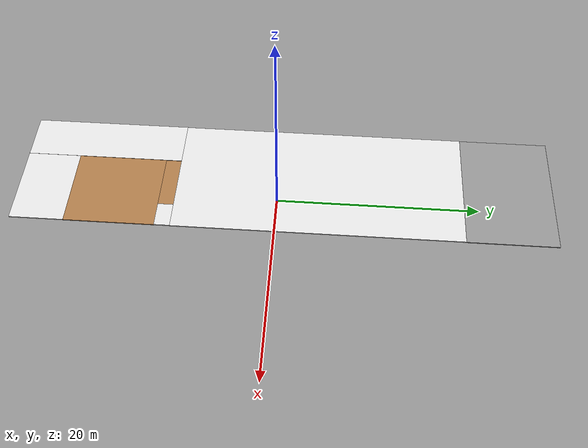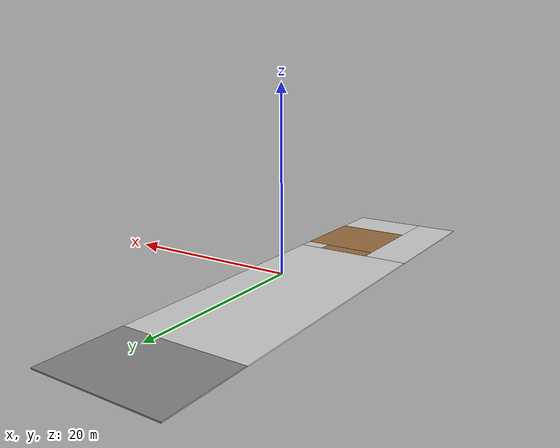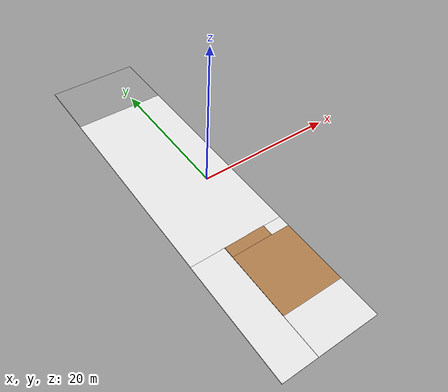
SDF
<?xml version='1.0'?>
<sdf version='1.7'>
  <model name='ageve_floor'>
    <link name='link'>
      <self_collide>0</self_collide>
      <enable_wind>0</enable_wind>
      <kinematic>0</kinematic>
      <pose>-2.67 23 0 0 -0 0</pose>
      <gravity>1</gravity>
      <inertial>
        <mass>1</mass>
        <pose>0 0 0 0 -0 0</pose>
        <inertia>
          <ixx>1</ixx>
          <ixy>0</ixy>
          <ixz>0</ixz>
          <iyy>1</iyy>
          <iyz>0</iyz>
          <izz>1</izz>
        </inertia>
      </inertial>
      <visual name='visual'>
        <cast_shadows>0</cast_shadows>
        <geometry>
          <box>
            <size>13.2 9 0.1</size>
          </box>
        </geometry>
        <material>
          <shader type='pixel'>
            <normal_map>__default__</normal_map>
          </shader>
          <script>
            <name>Gazebo/Grey</name>
            <uri>__default__</uri>
          </script>
        </material>
        <pose>-0.08 0 0 0 -0 0</pose>
        <transparency>0</transparency>
      </visual>
      <collision name='collision'>
        <laser_retro>0</laser_retro>
        <max_contacts>10</max_contacts>
        <pose>-0.06 0 0 0 -0 0</pose>
        <geometry>
          <box>
            <size>13.2 9 0.1</size>
          </box>
        </geometry>
        <surface>
          <friction>
            <ode>
              <mu>1</mu>
              <mu2>1</mu2>
              <fdir1>0 0 0</fdir1>
              <slip1>0</slip1>
              <slip2>0</slip2>
            </ode>
            <torsional>
              <coefficient>1</coefficient>
              <patch_radius>0</patch_radius>
              <surface_radius>0</surface_radius>
              <use_patch_radius>1</use_patch_radius>
              <ode>
                <slip>0</slip>
              </ode>
            </torsional>
          </friction>
          <bounce>
            <restitution_coefficient>0</restitution_coefficient>
            <threshold>1e+06</threshold>
          </bounce>
          <contact>
            <collide_without_contact>0</collide_without_contact>
            <collide_without_contact_bitmask>1</collide_without_contact_bitmask>
            <collide_bitmask>1</collide_bitmask>
            <ode>
              <soft_cfm>0</soft_cfm>
              <soft_erp>0.2</soft_erp>
              <kp>1e+13</kp>
              <kd>1</kd>
              <max_vel>0.01</max_vel>
              <min_depth>0</min_depth>
            </ode>
            <bullet>
              <split_impulse>1</split_impulse>
              <split_impulse_penetration_threshold>-0.01</split_impulse_penetration_threshold>
              <soft_cfm>0</soft_cfm>
              <soft_erp>0.2</soft_erp>
              <kp>1e+13</kp>
              <kd>1</kd>
            </bullet>
          </contact>
        </surface>
      </collision>
    </link>
    <link name='link_clone'>
      <self_collide>0</self_collide>
      <enable_wind>0</enable_wind>
      <kinematic>0</kinematic>
      <pose>-2.69731 4.16 0 0 -0 0</pose>
      <gravity>1</gravity>
      <inertial>
        <mass>1</mass>
        <pose>0 0 0 0 -0 0</pose>
        <inertia>
          <ixx>1</ixx>
          <ixy>0</ixy>
          <ixz>0</ixz>
          <iyy>1</iyy>
          <iyz>0</iyz>
          <izz>1</izz>
        </inertia>
      </inertial>
      <visual name='visual'>
        <cast_shadows>0</cast_shadows>
        <geometry>
          <box>
            <size>13.2 28.8 0.1</size>
          </box>
        </geometry>
        <material>
          <shader type='pixel'>
            <normal_map>__default__</normal_map>
          </shader>
          <script>
            <name>Gazebo/White</name>
            <uri>__default__</uri>
          </script>
        </material>
        <pose>-0.08 0 0 0 -0 0</pose>
        <transparency>0</transparency>
      </visual>
      <collision name='collision'>
        <laser_retro>0</laser_retro>
        <max_contacts>10</max_contacts>
        <pose>-0.06 0 0 0 -0 0</pose>
        <geometry>
          <box>
            <size>13.2 28.8 0.1</size>
          </box>
        </geometry>
        <surface>
          <friction>
            <ode>
              <mu>1</mu>
              <mu2>1</mu2>
              <fdir1>0 0 0</fdir1>
              <slip1>0</slip1>
              <slip2>0</slip2>
            </ode>
            <torsional>
              <coefficient>1</coefficient>
              <patch_radius>0</patch_radius>
              <surface_radius>0</surface_radius>
              <use_patch_radius>1</use_patch_radius>
              <ode>
                <slip>0</slip>
              </ode>
            </torsional>
          </friction>
          <bounce>
            <restitution_coefficient>0</restitution_coefficient>
            <threshold>1e+06</threshold>
          </bounce>
          <contact>
            <collide_without_contact>0</collide_without_contact>
            <collide_without_contact_bitmask>1</collide_without_contact_bitmask>
            <collide_bitmask>1</collide_bitmask>
            <ode>
              <soft_cfm>0</soft_cfm>
              <soft_erp>0.2</soft_erp>
              <kp>1e+13</kp>
              <kd>1</kd>
              <max_vel>0.01</max_vel>
              <min_depth>0</min_depth>
            </ode>
            <bullet>
              <split_impulse>1</split_impulse>
              <split_impulse_penetration_threshold>-0.01</split_impulse_penetration_threshold>
              <soft_cfm>0</soft_cfm>
              <soft_erp>0.2</soft_erp>
              <kp>1e+13</kp>
              <kd>1</kd>
            </bullet>
          </contact>
        </surface>
      </collision>
    </link>
    <link name='link_clone_0'>
      <self_collide>0</self_collide>
      <enable_wind>0</enable_wind>
      <kinematic>0</kinematic>
      <pose>-0.3 -16.2948 0 0 -0 0</pose>
      <gravity>1</gravity>
      <inertial>
        <mass>1</mass>
        <pose>0 0 0 0 -0 0</pose>
        <inertia>
          <ixx>1</ixx>
          <ixy>0</ixy>
          <ixz>0</ixz>
          <iyy>1</iyy>
          <iyz>0</iyz>
          <izz>1</izz>
        </inertia>
      </inertial>
      <visual name='visual'>
        <cast_shadows>0</cast_shadows>
        <geometry>
          <box>
            <size>8.4 9 0.1</size>
          </box>
        </geometry>
        <material>
          <shader type='pixel'>
            <normal_map>__default__</normal_map>
          </shader>
          <script>
            <name>Gazebo/Wood</name>
            <uri>__default__</uri>
          </script>
        </material>
        <pose>-0.08 0 0 0 -0 0</pose>
        <transparency>0</transparency>
      </visual>
      <collision name='collision'>
        <laser_retro>0</laser_retro>
        <max_contacts>10</max_contacts>
        <pose>-0.06 0 0 0 -0 0</pose>
        <geometry>
          <box>
            <size>8.4 9 0.1</size>
          </box>
        </geometry>
        <surface>
          <friction>
            <ode>
              <mu>1</mu>
              <mu2>1</mu2>
              <fdir1>0 0 0</fdir1>
              <slip1>0</slip1>
              <slip2>0</slip2>
            </ode>
            <torsional>
              <coefficient>1</coefficient>
              <patch_radius>0</patch_radius>
              <surface_radius>0</surface_radius>
              <use_patch_radius>1</use_patch_radius>
              <ode>
                <slip>0</slip>
              </ode>
            </torsional>
          </friction>
          <bounce>
            <restitution_coefficient>0</restitution_coefficient>
            <threshold>1e+06</threshold>
          </bounce>
          <contact>
            <collide_without_contact>0</collide_without_contact>
            <collide_without_contact_bitmask>1</collide_without_contact_bitmask>
            <collide_bitmask>1</collide_bitmask>
            <ode>
              <soft_cfm>0</soft_cfm>
              <soft_erp>0.2</soft_erp>
              <kp>1e+13</kp>
              <kd>1</kd>
              <max_vel>0.01</max_vel>
              <min_depth>0</min_depth>
            </ode>
            <bullet>
              <split_impulse>1</split_impulse>
              <split_impulse_penetration_threshold>-0.01</split_impulse_penetration_threshold>
              <soft_cfm>0</soft_cfm>
              <soft_erp>0.2</soft_erp>
              <kp>1e+13</kp>
              <kd>1</kd>
            </bullet>
          </contact>
        </surface>
      </collision>
    </link>
    <link name='link_clone_0_clone'>
      <self_collide>0</self_collide>
      <enable_wind>0</enable_wind>
      <kinematic>0</kinematic>
      <pose>-1.58 -11 0 0 -0 0</pose>
      <gravity>1</gravity>
      <inertial>
        <mass>1</mass>
        <pose>0 0 0 0 -0 0</pose>
        <inertia>
          <ixx>1</ixx>
          <ixy>0</ixy>
          <ixz>0</ixz>
          <iyy>1</iyy>
          <iyz>0</iyz>
          <izz>1</izz>
        </inertia>
      </inertial>
      <visual name='visual'>
        <cast_shadows>0</cast_shadows>
        <geometry>
          <box>
            <size>5.8 1.6 0.1</size>
          </box>
        </geometry>
        <material>
          <shader type='pixel'>
            <normal_map>__default__</normal_map>
          </shader>
          <script>
            <name>Gazebo/Wood</name>
            <uri>__default__</uri>
          </script>
        </material>
        <pose>-0.08 0 0 0 -0 0</pose>
        <transparency>0</transparency>
      </visual>
      <collision name='collision'>
        <laser_retro>0</laser_retro>
        <max_contacts>10</max_contacts>
        <pose>-0.06 0 0 0 -0 0</pose>
        <geometry>
          <box>
            <size>5.8 1.6 0.1</size>
          </box>
        </geometry>
        <surface>
          <friction>
            <ode>
              <mu>1</mu>
              <mu2>1</mu2>
              <fdir1>0 0 0</fdir1>
              <slip1>0</slip1>
              <slip2>0</slip2>
            </ode>
            <torsional>
              <coefficient>1</coefficient>
              <patch_radius>0</patch_radius>
              <surface_radius>0</surface_radius>
              <use_patch_radius>1</use_patch_radius>
              <ode>
                <slip>0</slip>
              </ode>
            </torsional>
          </friction>
          <bounce>
            <restitution_coefficient>0</restitution_coefficient>
            <threshold>1e+06</threshold>
          </bounce>
          <contact>
            <collide_without_contact>0</collide_without_contact>
            <collide_without_contact_bitmask>1</collide_without_contact_bitmask>
            <collide_bitmask>1</collide_bitmask>
            <ode>
              <soft_cfm>0</soft_cfm>
              <soft_erp>0.2</soft_erp>
              <kp>1e+13</kp>
              <kd>1</kd>
              <max_vel>0.01</max_vel>
              <min_depth>0</min_depth>
            </ode>
            <bullet>
              <split_impulse>1</split_impulse>
              <split_impulse_penetration_threshold>-0.01</split_impulse_penetration_threshold>
              <soft_cfm>0</soft_cfm>
              <soft_erp>0.2</soft_erp>
              <kp>1e+13</kp>
              <kd>1</kd>
            </bullet>
          </contact>
        </surface>
      </collision>
    </link>
    <link name='link_clone_clone'>
      <self_collide>0</self_collide>
      <enable_wind>0</enable_wind>
      <kinematic>0</kinematic>
      <pose>-6.92 -18.18 0 0 -0 0</pose>
      <gravity>1</gravity>
      <inertial>
        <mass>1</mass>
        <pose>0 0 0 0 -0 0</pose>
        <inertia>
          <ixx>1</ixx>
          <ixy>0</ixy>
          <ixz>0</ixz>
          <iyy>1</iyy>
          <iyz>0</iyz>
          <izz>1</izz>
        </inertia>
      </inertial>
      <visual name='visual'>
        <cast_shadows>0</cast_shadows>
        <geometry>
          <box>
            <size>4.8 16 0.1</size>
          </box>
        </geometry>
        <material>
          <shader type='pixel'>
            <normal_map>__default__</normal_map>
          </shader>
          <script>
            <name>Gazebo/White</name>
            <uri>__default__</uri>
          </script>
        </material>
        <pose>-0.08 0 0 0 -0 0</pose>
        <transparency>0</transparency>
      </visual>
      <collision name='collision'>
        <laser_retro>0</laser_retro>
        <max_contacts>10</max_contacts>
        <pose>-0.06 0 0 0 -0 0</pose>
        <geometry>
          <box>
            <size>4.8 16 0.1</size>
          </box>
        </geometry>
        <surface>
          <friction>
            <ode>
              <mu>1</mu>
              <mu2>1</mu2>
              <fdir1>0 0 0</fdir1>
              <slip1>0</slip1>
              <slip2>0</slip2>
            </ode>
            <torsional>
              <coefficient>1</coefficient>
              <patch_radius>0</patch_radius>
              <surface_radius>0</surface_radius>
              <use_patch_radius>1</use_patch_radius>
              <ode>
                <slip>0</slip>
              </ode>
            </torsional>
          </friction>
          <bounce>
            <restitution_coefficient>0</restitution_coefficient>
            <threshold>1e+06</threshold>
          </bounce>
          <contact>
            <collide_without_contact>0</collide_without_contact>
            <collide_without_contact_bitmask>1</collide_without_contact_bitmask>
            <collide_bitmask>1</collide_bitmask>
            <ode>
              <soft_cfm>0</soft_cfm>
              <soft_erp>0.2</soft_erp>
              <kp>1e+13</kp>
              <kd>1</kd>
              <max_vel>0.01</max_vel>
              <min_depth>0</min_depth>
            </ode>
            <bullet>
              <split_impulse>1</split_impulse>
              <split_impulse_penetration_threshold>-0.01</split_impulse_penetration_threshold>
              <soft_cfm>0</soft_cfm>
              <soft_erp>0.2</soft_erp>
              <kp>1e+13</kp>
              <kd>1</kd>
            </bullet>
          </contact>
        </surface>
      </collision>
    </link>
    <link name='link_clone_clone_clone'>
      <self_collide>0</self_collide>
      <enable_wind>0</enable_wind>
      <kinematic>0</kinematic>
      <pose>2.57811 -11.04 0 0 -0 0</pose>
      <gravity>1</gravity>
      <inertial>
        <mass>1</mass>
        <pose>0 0 0 0 -0 0</pose>
        <inertia>
          <ixx>1</ixx>
          <ixy>0</ixy>
          <ixz>0</ixz>
          <iyy>1</iyy>
          <iyz>0</iyz>
          <izz>1</izz>
        </inertia>
      </inertial>
      <visual name='visual'>
        <cast_shadows>0</cast_shadows>
        <geometry>
          <box>
            <size>2.6 1.6 0.1</size>
          </box>
        </geometry>
        <material>
          <shader type='pixel'>
            <normal_map>__default__</normal_map>
          </shader>
          <script>
            <name>Gazebo/White</name>
            <uri>__default__</uri>
          </script>
        </material>
        <pose>-0.08 0 0 0 -0 0</pose>
        <transparency>0</transparency>
      </visual>
      <collision name='collision'>
        <laser_retro>0</laser_retro>
        <max_contacts>10</max_contacts>
        <pose>-0.06 0 0 0 -0 0</pose>
        <geometry>
          <box>
            <size>2.6 1.6 0.1</size>
          </box>
        </geometry>
        <surface>
          <friction>
            <ode>
              <mu>1</mu>
              <mu2>1</mu2>
              <fdir1>0 0 0</fdir1>
              <slip1>0</slip1>
              <slip2>0</slip2>
            </ode>
            <torsional>
              <coefficient>1</coefficient>
              <patch_radius>0</patch_radius>
              <surface_radius>0</surface_radius>
              <use_patch_radius>1</use_patch_radius>
              <ode>
                <slip>0</slip>
              </ode>
            </torsional>
          </friction>
          <bounce>
            <restitution_coefficient>0</restitution_coefficient>
            <threshold>1e+06</threshold>
          </bounce>
          <contact>
            <collide_without_contact>0</collide_without_contact>
            <collide_without_contact_bitmask>1</collide_without_contact_bitmask>
            <collide_bitmask>1</collide_bitmask>
            <ode>
              <soft_cfm>0</soft_cfm>
              <soft_erp>0.2</soft_erp>
              <kp>1e+13</kp>
              <kd>1</kd>
              <max_vel>0.01</max_vel>
              <min_depth>0</min_depth>
            </ode>
            <bullet>
              <split_impulse>1</split_impulse>
              <split_impulse_penetration_threshold>-0.01</split_impulse_penetration_threshold>
              <soft_cfm>0</soft_cfm>
              <soft_erp>0.2</soft_erp>
              <kp>1e+13</kp>
              <kd>1</kd>
            </bullet>
          </contact>
        </surface>
      </collision>
    </link>
    <link name='link_clone_clone_clone_0'>
      <self_collide>0</self_collide>
      <enable_wind>0</enable_wind>
      <kinematic>0</kinematic>
      <pose>-0.313896 -23.48 0 0 -0 0</pose>
      <gravity>1</gravity>
      <inertial>
        <mass>1</mass>
        <pose>0 0 0 0 -0 0</pose>
        <inertia>
          <ixx>1</ixx>
          <ixy>0</ixy>
          <ixz>0</ixz>
          <iyy>1</iyy>
          <iyz>0</iyz>
          <izz>1</izz>
        </inertia>
      </inertial>
      <visual name='visual'>
        <cast_shadows>0</cast_shadows>
        <geometry>
          <box>
            <size>8.4 5.4 0.1</size>
          </box>
        </geometry>
        <material>
          <shader type='pixel'>
            <normal_map>__default__</normal_map>
          </shader>
          <script>
            <name>Gazebo/White</name>
            <uri>__default__</uri>
          </script>
        </material>
        <pose>-0.08 0 0 0 -0 0</pose>
        <transparency>0</transparency>
      </visual>
      <collision name='collision'>
        <laser_retro>0</laser_retro>
        <max_contacts>10</max_contacts>
        <pose>-0.06 0 0 0 -0 0</pose>
        <geometry>
          <box>
            <size>8.4 5.4 0.1</size>
          </box>
        </geometry>
        <surface>
          <friction>
            <ode>
              <mu>1</mu>
              <mu2>1</mu2>
              <fdir1>0 0 0</fdir1>
              <slip1>0</slip1>
              <slip2>0</slip2>
            </ode>
            <torsional>
              <coefficient>1</coefficient>
              <patch_radius>0</patch_radius>
              <surface_radius>0</surface_radius>
              <use_patch_radius>1</use_patch_radius>
              <ode>
                <slip>0</slip>
              </ode>
            </torsional>
          </friction>
          <bounce>
            <restitution_coefficient>0</restitution_coefficient>
            <threshold>1e+06</threshold>
          </bounce>
          <contact>
            <collide_without_contact>0</collide_without_contact>
            <collide_without_contact_bitmask>1</collide_without_contact_bitmask>
            <collide_bitmask>1</collide_bitmask>
            <ode>
              <soft_cfm>0</soft_cfm>
              <soft_erp>0.2</soft_erp>
              <kp>1e+13</kp>
              <kd>1</kd>
              <max_vel>0.01</max_vel>
              <min_depth>0</min_depth>
            </ode>
            <bullet>
              <split_impulse>1</split_impulse>
              <split_impulse_penetration_threshold>-0.01</split_impulse_penetration_threshold>
              <soft_cfm>0</soft_cfm>
              <soft_erp>0.2</soft_erp>
              <kp>1e+13</kp>
              <kd>1</kd>
            </bullet>
          </contact>
        </surface>
      </collision>
    </link>
    <static>1</static>
    <allow_auto_disable>1</allow_auto_disable>
  </model>
</sdf>
